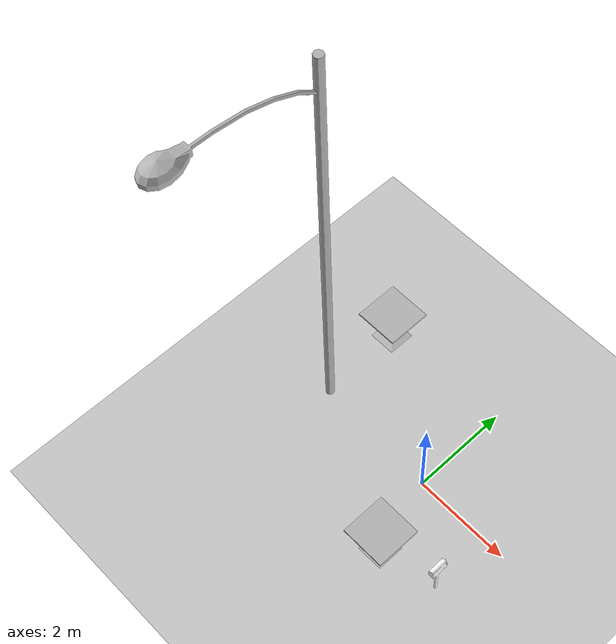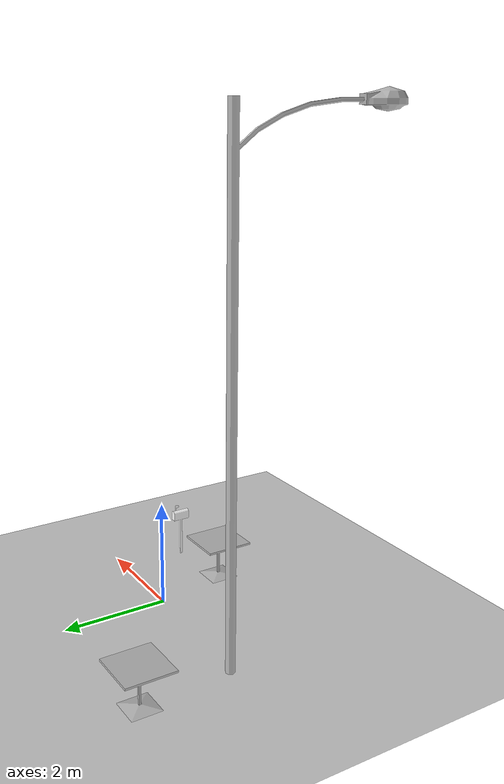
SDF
<sdf version="1.7">
 <world name="default">
  <light name="sun" type="directional">
   <pose>0 0 10 0 -0 0</pose>
   <diffuse>0.8 0.8 0.8 1</diffuse>
   <specular>0.2 0.2 0.2 1</specular>
   <attenuation>
    <range>1000</range>
    <constant>0.9</constant>
    <linear>0.01</linear>
    <quadratic>0.001</quadratic>
   </attenuation>
   <direction>-0.5 0.1 -0.9</direction>
   <spot><inner_angle>0</inner_angle><outer_angle>0</outer_angle><falloff>0</falloff></spot>
  </light>
  <model name="ground_plane">
   <static>1</static>
   <link name="link">
    <collision name="collision">
     <geometry><plane><normal>0 0 1</normal><size>100 100</size></plane></geometry>
     <surface>
      <contact><collide_bitmask>65535</collide_bitmask></contact>
      <friction><ode><mu>100</mu><mu2>50</mu2></ode></friction>
     </surface>
    </collision>
    <visual name="visual">
     <cast_shadows>0</cast_shadows>
     <geometry><plane><normal>0 0 1</normal><size>100 100</size></plane></geometry>
     <material>
      <script><uri>file://media/materials/scripts/gazebo.material</uri><name>Gazebo/Grey</name></script>
     </material>
    </visual>
   </link>
  </model>
  <gravity>0 0 -9.8</gravity>
  <magnetic_field>6e-06 2.3e-05 -4.2e-05</magnetic_field>
  <atmosphere type="adiabatic"/>
  <physics type="ode">
   <max_step_size>0.001</max_step_size>
   <real_time_factor>1</real_time_factor>
   <real_time_update_rate>1000</real_time_update_rate>
  </physics>
  <scene><ambient>0.4 0.4 0.4 1</ambient><background>0.7 0.7 0.7 1</background><shadows>1</shadows></scene>
  <spherical_coordinates>
   <surface_model>EARTH_WGS84</surface_model>
   <latitude_deg>0</latitude_deg>
   <longitude_deg>0</longitude_deg>
   <elevation>0</elevation>
   <heading_deg>0</heading_deg>
  </spherical_coordinates>
  <model name="cafe_table">
   <static>1</static>
   <link name="link">
    <collision name="surface">
     <pose>0 0 0.755 0 -0 0</pose>
     <geometry><box><size>0.913 0.913 0.04</size></box></geometry>
    </collision>
    <collision name="column">
     <pose>0 0 0.37 0 -0 0</pose>
     <geometry><box><size>0.042 0.042 0.74</size></box></geometry>
    </collision>
    <collision name="base">
     <pose>0 0 0.02 0 -0 0</pose>
     <geometry><box><size>0.56 0.56 0.04</size></box></geometry>
    </collision>
    <visual name="visual">
     <geometry><mesh><uri>model://cafe_table/meshes/cafe_table.dae</uri></mesh></geometry>
    </visual>
   </link>
   <pose>0.376955 -1.4461 0 0 -0 0</pose>
  </model>
  <model name="cafe_table_0">
   <static>1</static>
   <link name="link">
    <collision name="surface">
     <pose>0 0 0.755 0 -0 0</pose>
     <geometry><box><size>0.913 0.913 0.04</size></box></geometry>
    </collision>
    <collision name="column">
     <pose>0 0 0.37 0 -0 0</pose>
     <geometry><box><size>0.042 0.042 0.74</size></box></geometry>
    </collision>
    <collision name="base">
     <pose>0 0 0.02 0 -0 0</pose>
     <geometry><box><size>0.56 0.56 0.04</size></box></geometry>
    </collision>
    <visual name="visual">
     <geometry><mesh><uri>model://cafe_table/meshes/cafe_table.dae</uri></mesh></geometry>
    </visual>
   </link>
   <pose>-2.66132 1.85303 0 0 -0 0</pose>
  </model>
  <model name="Lamp Post">
   <static>1</static>
   <link name="link">
    <collision name="collision">
     <geometry><mesh><uri>model://lamp_post/meshes/lamp_post.dae</uri><scale>3 3 3</scale></mesh></geometry>
    </collision>
    <visual name="visual">
     <geometry><mesh><uri>model://lamp_post/meshes/lamp_post.dae</uri><scale>3 3 3</scale></mesh></geometry>
    </visual>
   </link>
   <pose>-2.59649 0.111073 0 0 -0 0</pose>
  </model>
  <model name="Mailbox">
   <link name="link">
    <collision name="collision">
     <geometry><mesh><uri>model://mailbox/meshes/mailbox.dae</uri></mesh></geometry>
    </collision>
    <visual name="visual">
     <geometry><mesh><uri>model://mailbox/meshes/mailbox.dae</uri></mesh></geometry>
     <material>
      <script>
       <uri>model://mailbox/materials/scripts</uri>
       <uri>model://mailbox/materials/textures</uri>
       <name>Mailbox/Diffuse</name>
      </script>
     </material>
    </visual>
    <inertial>
     <inertia><ixx>1</ixx><ixy>0</ixy><ixz>0</ixz><iyy>1</iyy><iyz>0</iyz><izz>1</izz></inertia>
     <mass>1</mass>
    </inertial>
   </link>
   <pose>1.57862 -1.26663 -0 -6e-06 -4e-06 0</pose>
  </model>
 </world>
</sdf>
